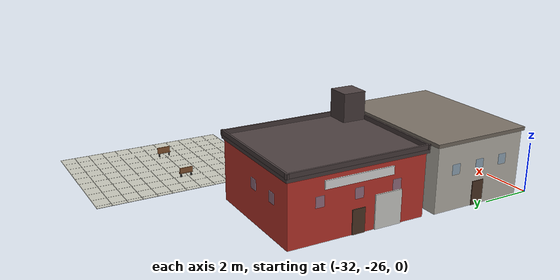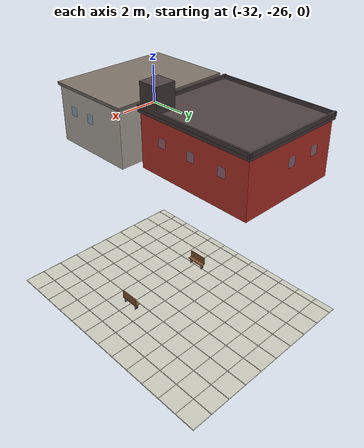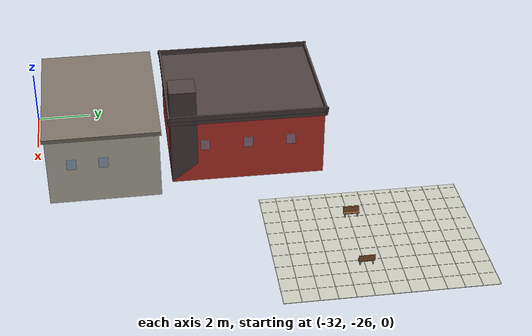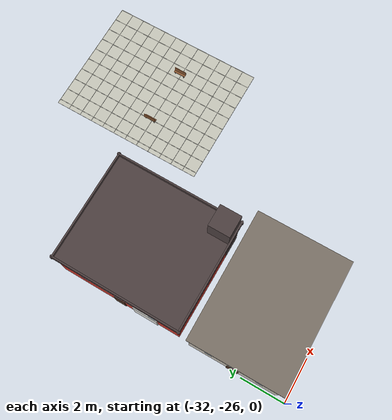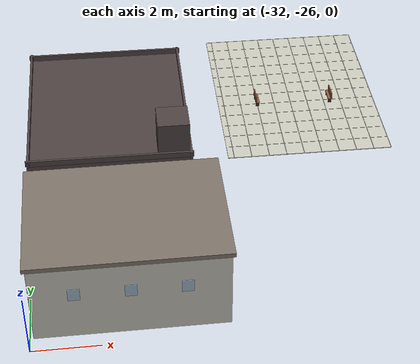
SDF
<sdf version="1.10">
 <world name="city_town_real_improved">
  <model name="central_plaza">
   <static>true</static>
   <pose>-22.6455993652344 -14.5340393066406 0 0 0 1.56522998544021</pose>
   <link name="link">
    <collision name="plaza_col">
     <pose>0 0 0.008 0 0 0</pose>
     <geometry><box><size>7.2 5.6 0.016</size></box></geometry>
    </collision>
    <visual name="plaza_vis">
     <pose>0 0 0.008 0 0 0</pose>
     <geometry><box><size>7.2 5.6 0.016</size></box></geometry>
     <material>
      <ambient>0.779999971 0.779999971 0.730000019 1</ambient>
      <diffuse>0.779999971 0.779999971 0.730000019 1</diffuse>
      <specular>0.0799999982 0.0799999982 0.0799999982 1</specular>
     </material>
    </visual>
    <visual name="gx0">
     <pose>-3.6 0 0.0164 0 0 0</pose>
     <geometry><box><size>0.016 5.6 0.002</size></box></geometry>
     <material>
      <ambient>0.639999986 0.639999986 0.600000024 1</ambient>
      <diffuse>0.639999986 0.639999986 0.600000024 1</diffuse>
      <specular>0.0799999982 0.0799999982 0.0799999982 1</specular>
     </material>
    </visual>
    <visual name="gx1">
     <pose>-3 0 0.0164 0 0 0</pose>
     <geometry><box><size>0.016 5.6 0.002</size></box></geometry>
     <material>
      <ambient>0.639999986 0.639999986 0.600000024 1</ambient>
      <diffuse>0.639999986 0.639999986 0.600000024 1</diffuse>
      <specular>0.0799999982 0.0799999982 0.0799999982 1</specular>
     </material>
    </visual>
    <visual name="gx2">
     <pose>-2.4 0 0.0164 0 0 0</pose>
     <geometry><box><size>0.016 5.6 0.002</size></box></geometry>
     <material>
      <ambient>0.639999986 0.639999986 0.600000024 1</ambient>
      <diffuse>0.639999986 0.639999986 0.600000024 1</diffuse>
      <specular>0.0799999982 0.0799999982 0.0799999982 1</specular>
     </material>
    </visual>
    <visual name="gx3">
     <pose>-1.8 0 0.0164 0 0 0</pose>
     <geometry><box><size>0.016 5.6 0.002</size></box></geometry>
     <material>
      <ambient>0.639999986 0.639999986 0.600000024 1</ambient>
      <diffuse>0.639999986 0.639999986 0.600000024 1</diffuse>
      <specular>0.0799999982 0.0799999982 0.0799999982 1</specular>
     </material>
    </visual>
    <visual name="gx4">
     <pose>-1.2 0 0.0164 0 0 0</pose>
     <geometry><box><size>0.016 5.6 0.002</size></box></geometry>
     <material>
      <ambient>0.639999986 0.639999986 0.600000024 1</ambient>
      <diffuse>0.639999986 0.639999986 0.600000024 1</diffuse>
      <specular>0.0799999982 0.0799999982 0.0799999982 1</specular>
     </material>
    </visual>
    <visual name="gx5">
     <pose>-0.6 0 0.0164 0 0 0</pose>
     <geometry><box><size>0.016 5.6 0.002</size></box></geometry>
     <material>
      <ambient>0.639999986 0.639999986 0.600000024 1</ambient>
      <diffuse>0.639999986 0.639999986 0.600000024 1</diffuse>
      <specular>0.0799999982 0.0799999982 0.0799999982 1</specular>
     </material>
    </visual>
    <visual name="gx6">
     <pose>0 0 0.0164 0 0 0</pose>
     <geometry><box><size>0.016 5.6 0.002</size></box></geometry>
     <material>
      <ambient>0.639999986 0.639999986 0.600000024 1</ambient>
      <diffuse>0.639999986 0.639999986 0.600000024 1</diffuse>
      <specular>0.0799999982 0.0799999982 0.0799999982 1</specular>
     </material>
    </visual>
    <visual name="gx7">
     <pose>0.6 0 0.0164 0 0 0</pose>
     <geometry><box><size>0.016 5.6 0.002</size></box></geometry>
     <material>
      <ambient>0.639999986 0.639999986 0.600000024 1</ambient>
      <diffuse>0.639999986 0.639999986 0.600000024 1</diffuse>
      <specular>0.0799999982 0.0799999982 0.0799999982 1</specular>
     </material>
    </visual>
    <visual name="gx8">
     <pose>1.2 0 0.0164 0 0 0</pose>
     <geometry><box><size>0.016 5.6 0.002</size></box></geometry>
     <material>
      <ambient>0.639999986 0.639999986 0.600000024 1</ambient>
      <diffuse>0.639999986 0.639999986 0.600000024 1</diffuse>
      <specular>0.0799999982 0.0799999982 0.0799999982 1</specular>
     </material>
    </visual>
    <visual name="gx9">
     <pose>1.8 0 0.0164 0 0 0</pose>
     <geometry><box><size>0.016 5.6 0.002</size></box></geometry>
     <material>
      <ambient>0.639999986 0.639999986 0.600000024 1</ambient>
      <diffuse>0.639999986 0.639999986 0.600000024 1</diffuse>
      <specular>0.0799999982 0.0799999982 0.0799999982 1</specular>
     </material>
    </visual>
    <visual name="gx10">
     <pose>2.4 0 0.0164 0 0 0</pose>
     <geometry><box><size>0.016 5.6 0.002</size></box></geometry>
     <material>
      <ambient>0.639999986 0.639999986 0.600000024 1</ambient>
      <diffuse>0.639999986 0.639999986 0.600000024 1</diffuse>
      <specular>0.0799999982 0.0799999982 0.0799999982 1</specular>
     </material>
    </visual>
    <visual name="gx11">
     <pose>3 0 0.0164 0 0 0</pose>
     <geometry><box><size>0.016 5.6 0.002</size></box></geometry>
     <material>
      <ambient>0.639999986 0.639999986 0.600000024 1</ambient>
      <diffuse>0.639999986 0.639999986 0.600000024 1</diffuse>
      <specular>0.0799999982 0.0799999982 0.0799999982 1</specular>
     </material>
    </visual>
    <visual name="gx12">
     <pose>3.6 0 0.0164 0 0 0</pose>
     <geometry><box><size>0.016 5.6 0.002</size></box></geometry>
     <material>
      <ambient>0.639999986 0.639999986 0.600000024 1</ambient>
      <diffuse>0.639999986 0.639999986 0.600000024 1</diffuse>
      <specular>0.0799999982 0.0799999982 0.0799999982 1</specular>
     </material>
    </visual>
    <visual name="gy0">
     <pose>0 -2.8 0.0164 0 0 0</pose>
     <geometry><box><size>7.2 0.016 0.002</size></box></geometry>
     <material>
      <ambient>0.639999986 0.639999986 0.600000024 1</ambient>
      <diffuse>0.639999986 0.639999986 0.600000024 1</diffuse>
      <specular>0.0799999982 0.0799999982 0.0799999982 1</specular>
     </material>
    </visual>
    <visual name="gy1">
     <pose>0 -2.2 0.0164 0 0 0</pose>
     <geometry><box><size>7.2 0.016 0.002</size></box></geometry>
     <material>
      <ambient>0.639999986 0.639999986 0.600000024 1</ambient>
      <diffuse>0.639999986 0.639999986 0.600000024 1</diffuse>
      <specular>0.0799999982 0.0799999982 0.0799999982 1</specular>
     </material>
    </visual>
    <visual name="gy2">
     <pose>0 -1.6 0.0164 0 0 0</pose>
     <geometry><box><size>7.2 0.016 0.002</size></box></geometry>
     <material>
      <ambient>0.639999986 0.639999986 0.600000024 1</ambient>
      <diffuse>0.639999986 0.639999986 0.600000024 1</diffuse>
      <specular>0.0799999982 0.0799999982 0.0799999982 1</specular>
     </material>
    </visual>
    <visual name="gy3">
     <pose>0 -1 0.0164 0 0 0</pose>
     <geometry><box><size>7.2 0.016 0.002</size></box></geometry>
     <material>
      <ambient>0.639999986 0.639999986 0.600000024 1</ambient>
      <diffuse>0.639999986 0.639999986 0.600000024 1</diffuse>
      <specular>0.0799999982 0.0799999982 0.0799999982 1</specular>
     </material>
    </visual>
    <visual name="gy4">
     <pose>0 -0.4 0.0164 0 0 0</pose>
     <geometry><box><size>7.2 0.016 0.002</size></box></geometry>
     <material>
      <ambient>0.639999986 0.639999986 0.600000024 1</ambient>
      <diffuse>0.639999986 0.639999986 0.600000024 1</diffuse>
      <specular>0.0799999982 0.0799999982 0.0799999982 1</specular>
     </material>
    </visual>
    <visual name="gy5">
     <pose>0 0.2 0.0164 0 0 0</pose>
     <geometry><box><size>7.2 0.016 0.002</size></box></geometry>
     <material>
      <ambient>0.639999986 0.639999986 0.600000024 1</ambient>
      <diffuse>0.639999986 0.639999986 0.600000024 1</diffuse>
      <specular>0.0799999982 0.0799999982 0.0799999982 1</specular>
     </material>
    </visual>
    <visual name="gy6">
     <pose>0 0.8 0.0164 0 0 0</pose>
     <geometry><box><size>7.2 0.016 0.002</size></box></geometry>
     <material>
      <ambient>0.639999986 0.639999986 0.600000024 1</ambient>
      <diffuse>0.639999986 0.639999986 0.600000024 1</diffuse>
      <specular>0.0799999982 0.0799999982 0.0799999982 1</specular>
     </material>
    </visual>
    <visual name="gy7">
     <pose>0 1.4 0.0164 0 0 0</pose>
     <geometry><box><size>7.2 0.016 0.002</size></box></geometry>
     <material>
      <ambient>0.639999986 0.639999986 0.600000024 1</ambient>
      <diffuse>0.639999986 0.639999986 0.600000024 1</diffuse>
      <specular>0.0799999982 0.0799999982 0.0799999982 1</specular>
     </material>
    </visual>
    <visual name="gy8">
     <pose>0 2 0.0164 0 0 0</pose>
     <geometry><box><size>7.2 0.016 0.002</size></box></geometry>
     <material>
      <ambient>0.639999986 0.639999986 0.600000024 1</ambient>
      <diffuse>0.639999986 0.639999986 0.600000024 1</diffuse>
      <specular>0.0799999982 0.0799999982 0.0799999982 1</specular>
     </material>
    </visual>
    <visual name="gy9">
     <pose>0 2.6 0.0164 0 0 0</pose>
     <geometry><box><size>7.2 0.016 0.002</size></box></geometry>
     <material>
      <ambient>0.639999986 0.639999986 0.600000024 1</ambient>
      <diffuse>0.639999986 0.639999986 0.600000024 1</diffuse>
      <specular>0.0799999982 0.0799999982 0.0799999982 1</specular>
     </material>
    </visual>
    <inertial>
     <mass>1</mass>
     <inertia><ixx>1</ixx><ixy>0</ixy><ixz>0</ixz><iyy>1</iyy><iyz>0</iyz><izz>1</izz></inertia>
    </inertial>
   </link>
  </model>
  <model name="fire_station">
   <static>true</static>
   <pose>-29.3855163574219 -18.2624008178711 0 0 0 -1.58175001056651</pose>
   <link name="link">
    <collision name="body_col">
     <pose>0 0 1.24 0 0 0</pose>
     <geometry><box><size>5.6 4.8 2.48</size></box></geometry>
    </collision>
    <visual name="body_vis">
     <pose>0 0 1.24 0 0 0</pose>
     <geometry><box><size>5.6 4.8 2.48</size></box></geometry>
     <material>
      <ambient>0.779999971 0.219999999 0.180000007 1</ambient>
      <diffuse>0.779999971 0.219999999 0.180000007 1</diffuse>
      <specular>0.0799999982 0.0799999982 0.0799999982 1</specular>
     </material>
    </visual>
    <collision name="roof_col">
     <pose>0 0 2.55 0 0 0</pose>
     <geometry><box><size>5.76 4.96 0.14</size></box></geometry>
    </collision>
    <visual name="roof_vis">
     <pose>0 0 2.55 0 0 0</pose>
     <geometry><box><size>5.76 4.96 0.14</size></box></geometry>
     <material>
      <ambient>0.300000012 0.25 0.25 1</ambient>
      <diffuse>0.300000012 0.25 0.25 1</diffuse>
      <specular>0.0799999982 0.0799999982 0.0799999982 1</specular>
     </material>
    </visual>
    <visual name="p1_vis">
     <pose>0 2.436 2.708 0 0 0</pose>
     <geometry><box><size>5.82 0.072 0.18</size></box></geometry>
     <material>
      <ambient>0.300000012 0.25 0.25 1</ambient>
      <diffuse>0.300000012 0.25 0.25 1</diffuse>
      <specular>0.0799999982 0.0799999982 0.0799999982 1</specular>
     </material>
    </visual>
    <visual name="p2_vis">
     <pose>0 -2.436 2.708 0 0 0</pose>
     <geometry><box><size>5.82 0.072 0.18</size></box></geometry>
     <material>
      <ambient>0.300000012 0.25 0.25 1</ambient>
      <diffuse>0.300000012 0.25 0.25 1</diffuse>
      <specular>0.0799999982 0.0799999982 0.0799999982 1</specular>
     </material>
    </visual>
    <visual name="p3_vis">
     <pose>2.836 0 2.708 0 0 0</pose>
     <geometry><box><size>0.072 5.02 0.18</size></box></geometry>
     <material>
      <ambient>0.300000012 0.25 0.25 1</ambient>
      <diffuse>0.300000012 0.25 0.25 1</diffuse>
      <specular>0.0799999982 0.0799999982 0.0799999982 1</specular>
     </material>
    </visual>
    <visual name="p4_vis">
     <pose>-2.836 0 2.708 0 0 0</pose>
     <geometry><box><size>0.072 5.02 0.18</size></box></geometry>
     <material>
      <ambient>0.300000012 0.25 0.25 1</ambient>
      <diffuse>0.300000012 0.25 0.25 1</diffuse>
      <specular>0.0799999982 0.0799999982 0.0799999982 1</specular>
     </material>
    </visual>
    <visual name="door_vis">
     <pose>0 -2.416 0.48 0 0 0</pose>
     <geometry><box><size>0.52 0.04 0.96</size></box></geometry>
     <material>
      <ambient>0.319999993 0.219999999 0.159999996 1</ambient>
      <diffuse>0.319999993 0.219999999 0.159999996 1</diffuse>
      <specular>0.0799999982 0.0799999982 0.0799999982 1</specular>
     </material>
    </visual>
    <visual name="win_south_0">
     <pose>-1.568 -2.412 1.5376 0 0 0</pose>
     <geometry><box><size>0.34 0.032 0.4</size></box></geometry>
     <material>
      <ambient>0.550000012 0.720000029 0.879999995 0.550000012</ambient>
      <diffuse>0.550000012 0.720000029 0.879999995 0.550000012</diffuse>
      <specular>0.0799999982 0.0799999982 0.0799999982 1</specular>
      <transparency>0.35</transparency>
     </material>
    </visual>
    <visual name="win_south_1">
     <pose>0 -2.412 1.5376 0 0 0</pose>
     <geometry><box><size>0.34 0.032 0.4</size></box></geometry>
     <material>
      <ambient>0.550000012 0.720000029 0.879999995 0.550000012</ambient>
      <diffuse>0.550000012 0.720000029 0.879999995 0.550000012</diffuse>
      <specular>0.0799999982 0.0799999982 0.0799999982 1</specular>
      <transparency>0.35</transparency>
     </material>
    </visual>
    <visual name="win_south_2">
     <pose>1.568 -2.412 1.5376 0 0 0</pose>
     <geometry><box><size>0.34 0.032 0.4</size></box></geometry>
     <material>
      <ambient>0.550000012 0.720000029 0.879999995 0.550000012</ambient>
      <diffuse>0.550000012 0.720000029 0.879999995 0.550000012</diffuse>
      <specular>0.0799999982 0.0799999982 0.0799999982 1</specular>
      <transparency>0.35</transparency>
     </material>
    </visual>
    <visual name="win_west_0">
     <pose>-2.812 -1.344 1.5376 0 0 0</pose>
     <geometry><box><size>0.032 0.34 0.4</size></box></geometry>
     <material>
      <ambient>0.550000012 0.720000029 0.879999995 0.550000012</ambient>
      <diffuse>0.550000012 0.720000029 0.879999995 0.550000012</diffuse>
      <specular>0.0799999982 0.0799999982 0.0799999982 1</specular>
      <transparency>0.35</transparency>
     </material>
    </visual>
    <visual name="win_west_1">
     <pose>-2.812 0 1.5376 0 0 0</pose>
     <geometry><box><size>0.032 0.34 0.4</size></box></geometry>
     <material>
      <ambient>0.550000012 0.720000029 0.879999995 0.550000012</ambient>
      <diffuse>0.550000012 0.720000029 0.879999995 0.550000012</diffuse>
      <specular>0.0799999982 0.0799999982 0.0799999982 1</specular>
      <transparency>0.35</transparency>
     </material>
    </visual>
    <visual name="win_east_0">
     <pose>2.812 -1.344 1.5376 0 0 0</pose>
     <geometry><box><size>0.032 0.34 0.4</size></box></geometry>
     <material>
      <ambient>0.550000012 0.720000029 0.879999995 0.550000012</ambient>
      <diffuse>0.550000012 0.720000029 0.879999995 0.550000012</diffuse>
      <specular>0.0799999982 0.0799999982 0.0799999982 1</specular>
      <transparency>0.35</transparency>
     </material>
    </visual>
    <visual name="win_east_1">
     <pose>2.812 0 1.5376 0 0 0</pose>
     <geometry><box><size>0.032 0.34 0.4</size></box></geometry>
     <material>
      <ambient>0.550000012 0.720000029 0.879999995 0.550000012</ambient>
      <diffuse>0.550000012 0.720000029 0.879999995 0.550000012</diffuse>
      <specular>0.0799999982 0.0799999982 0.0799999982 1</specular>
      <transparency>0.35</transparency>
     </material>
    </visual>
    <visual name="win_north_0">
     <pose>-1.568 2.412 1.5376 0 0 0</pose>
     <geometry><box><size>0.34 0.032 0.4</size></box></geometry>
     <material>
      <ambient>0.550000012 0.720000029 0.879999995 0.550000012</ambient>
      <diffuse>0.550000012 0.720000029 0.879999995 0.550000012</diffuse>
      <specular>0.0799999982 0.0799999982 0.0799999982 1</specular>
      <transparency>0.35</transparency>
     </material>
    </visual>
    <visual name="win_north_1">
     <pose>0 2.412 1.5376 0 0 0</pose>
     <geometry><box><size>0.34 0.032 0.4</size></box></geometry>
     <material>
      <ambient>0.550000012 0.720000029 0.879999995 0.550000012</ambient>
      <diffuse>0.550000012 0.720000029 0.879999995 0.550000012</diffuse>
      <specular>0.0799999982 0.0799999982 0.0799999982 1</specular>
      <transparency>0.35</transparency>
     </material>
    </visual>
    <visual name="win_north_2">
     <pose>1.568 2.412 1.5376 0 0 0</pose>
     <geometry><box><size>0.34 0.032 0.4</size></box></geometry>
     <material>
      <ambient>0.550000012 0.720000029 0.879999995 0.550000012</ambient>
      <diffuse>0.550000012 0.720000029 0.879999995 0.550000012</diffuse>
      <specular>0.0799999982 0.0799999982 0.0799999982 1</specular>
      <transparency>0.35</transparency>
     </material>
    </visual>
    <visual name="sign_vis">
     <pose>0 -2.428 2.108 0 0 0</pose>
     <geometry><box><size>2.8 0.048 0.32</size></box></geometry>
     <material>
      <ambient>0.920000017 0.920000017 0.920000017 1</ambient>
      <diffuse>0.920000017 0.920000017 0.920000017 1</diffuse>
      <specular>0.0799999982 0.0799999982 0.0799999982 1</specular>
     </material>
    </visual>
    <visual name="garage">
     <pose>1.232 -2.424 0.66 0 0 0</pose>
     <geometry><box><size>1.12 0.048 1.32</size></box></geometry>
     <material>
      <ambient>0.860000014 0.860000014 0.839999974 1</ambient>
      <diffuse>0.860000014 0.860000014 0.839999974 1</diffuse>
      <specular>0.0799999982 0.0799999982 0.0799999982 1</specular>
     </material>
    </visual>
    <collision name="tower_col">
     <pose>2.32 1.92 1.88 0 0 0</pose>
     <geometry><box><size>0.96 0.96 3.76</size></box></geometry>
    </collision>
    <visual name="tower_vis">
     <pose>2.32 1.92 1.88 0 0 0</pose>
     <geometry><box><size>0.96 0.96 3.76</size></box></geometry>
     <material>
      <ambient>0.300000012 0.25 0.25 1</ambient>
      <diffuse>0.300000012 0.25 0.25 1</diffuse>
      <specular>0.0799999982 0.0799999982 0.0799999982 1</specular>
     </material>
    </visual>
    <inertial>
     <mass>1</mass>
     <inertia><ixx>1</ixx><ixy>0</ixy><ixz>0</ixz><iyy>1</iyy><iyz>0</iyz><izz>1</izz></inertia>
    </inertial>
   </link>
  </model>
  <model name="bench_1">
   <static>true</static>
   <pose>-24.0544708251953 -15.0435668945313 0 0 0 -1.57385998235563</pose>
   <link name="link">
    <visual name="seat">
     <pose>0 0 0.18 0 0 0</pose>
     <geometry><box><size>0.56 0.14 0.032</size></box></geometry>
     <material>
      <ambient>0.550000012 0.349999994 0.200000003 1</ambient>
      <diffuse>0.550000012 0.349999994 0.200000003 1</diffuse>
      <specular>0.0799999982 0.0799999982 0.0799999982 1</specular>
     </material>
    </visual>
    <visual name="back">
     <pose>0 -0.048 0.3 0 0 0</pose>
     <geometry><box><size>0.56 0.032 0.22</size></box></geometry>
     <material>
      <ambient>0.550000012 0.349999994 0.200000003 1</ambient>
      <diffuse>0.550000012 0.349999994 0.200000003 1</diffuse>
      <specular>0.0799999982 0.0799999982 0.0799999982 1</specular>
     </material>
    </visual>
    <visual name="leg1">
     <pose>-0.22 0 0.088 0 0 0</pose>
     <geometry><box><size>0.032 0.112 0.176</size></box></geometry>
     <material>
      <ambient>0.180000007 0.180000007 0.180000007 1</ambient>
      <diffuse>0.180000007 0.180000007 0.180000007 1</diffuse>
      <specular>0.0799999982 0.0799999982 0.0799999982 1</specular>
     </material>
    </visual>
    <visual name="leg2">
     <pose>0.22 0 0.088 0 0 0</pose>
     <geometry><box><size>0.032 0.112 0.176</size></box></geometry>
     <material>
      <ambient>0.180000007 0.180000007 0.180000007 1</ambient>
      <diffuse>0.180000007 0.180000007 0.180000007 1</diffuse>
      <specular>0.0799999982 0.0799999982 0.0799999982 1</specular>
     </material>
    </visual>
    <inertial>
     <mass>1</mass>
     <inertia><ixx>1</ixx><ixy>0</ixy><ixz>0</ixz><iyy>1</iyy><iyz>0</iyz><izz>1</izz></inertia>
    </inertial>
   </link>
  </model>
  <model name="bench_2">
   <static>true</static>
   <pose>-21.4449645996094 -15.087646484375 0 0 0 1.57080003571763</pose>
   <link name="link">
    <visual name="seat">
     <pose>0 0 0.18 0 0 0</pose>
     <geometry><box><size>0.56 0.14 0.032</size></box></geometry>
     <material>
      <ambient>0.550000012 0.349999994 0.200000003 1</ambient>
      <diffuse>0.550000012 0.349999994 0.200000003 1</diffuse>
      <specular>0.0799999982 0.0799999982 0.0799999982 1</specular>
     </material>
    </visual>
    <visual name="back">
     <pose>0 -0.048 0.3 0 0 0</pose>
     <geometry><box><size>0.56 0.032 0.22</size></box></geometry>
     <material>
      <ambient>0.550000012 0.349999994 0.200000003 1</ambient>
      <diffuse>0.550000012 0.349999994 0.200000003 1</diffuse>
      <specular>0.0799999982 0.0799999982 0.0799999982 1</specular>
     </material>
    </visual>
    <visual name="leg1">
     <pose>-0.22 0 0.088 0 0 0</pose>
     <geometry><box><size>0.032 0.112 0.176</size></box></geometry>
     <material>
      <ambient>0.180000007 0.180000007 0.180000007 1</ambient>
      <diffuse>0.180000007 0.180000007 0.180000007 1</diffuse>
      <specular>0.0799999982 0.0799999982 0.0799999982 1</specular>
     </material>
    </visual>
    <visual name="leg2">
     <pose>0.22 0 0.088 0 0 0</pose>
     <geometry><box><size>0.032 0.112 0.176</size></box></geometry>
     <material>
      <ambient>0.180000007 0.180000007 0.180000007 1</ambient>
      <diffuse>0.180000007 0.180000007 0.180000007 1</diffuse>
      <specular>0.0799999982 0.0799999982 0.0799999982 1</specular>
     </material>
    </visual>
    <inertial>
     <mass>1</mass>
     <inertia><ixx>1</ixx><ixy>0</ixy><ixz>0</ixz><iyy>1</iyy><iyz>0</iyz><izz>1</izz></inertia>
    </inertial>
   </link>
  </model>
  <model name="warehouse_east_1">
   <static>true</static>
   <pose>-29.1020486767562 -23.5312824687326 0 0 0 0</pose>
   <link name="link">
    <collision name="body_col">
     <pose>0 0 1.3 0 0 0</pose>
     <geometry><box><size>5.6 4 2.6</size></box></geometry>
    </collision>
    <visual name="body_vis">
     <pose>0 0 1.3 0 0 0</pose>
     <geometry><box><size>5.6 4 2.6</size></box></geometry>
     <material>
      <ambient>0.75999999 0.74000001 0.699999988 1</ambient>
      <diffuse>0.75999999 0.74000001 0.699999988 1</diffuse>
      <specular>0.0799999982 0.0799999982 0.0799999982 1</specular>
     </material>
    </visual>
    <collision name="roof_col">
     <pose>0 0 2.67 0 0 0</pose>
     <geometry><box><size>5.76 4.16 0.14</size></box></geometry>
    </collision>
    <visual name="roof_vis">
     <pose>0 0 2.67 0 0 0</pose>
     <geometry><box><size>5.76 4.16 0.14</size></box></geometry>
     <material>
      <ambient>0.479999989 0.439999998 0.400000006 1</ambient>
      <diffuse>0.479999989 0.439999998 0.400000006 1</diffuse>
      <specular>0.0799999982 0.0799999982 0.0799999982 1</specular>
     </material>
    </visual>
    <visual name="door_vis">
     <pose>-2.816 0 0.48 0 0 0</pose>
     <geometry><box><size>0.04 0.52 0.96</size></box></geometry>
     <material>
      <ambient>0.319999993 0.219999999 0.159999996 1</ambient>
      <diffuse>0.319999993 0.219999999 0.159999996 1</diffuse>
      <specular>0.0799999982 0.0799999982 0.0799999982 1</specular>
     </material>
    </visual>
    <visual name="win_west_0">
     <pose>-2.812 -1.12 1.612 0 0 0</pose>
     <geometry><box><size>0.032 0.34 0.4</size></box></geometry>
     <material>
      <ambient>0.550000012 0.720000029 0.879999995 0.550000012</ambient>
      <diffuse>0.550000012 0.720000029 0.879999995 0.550000012</diffuse>
      <specular>0.0799999982 0.0799999982 0.0799999982 1</specular>
      <transparency>0.35</transparency>
     </material>
    </visual>
    <visual name="win_west_1">
     <pose>-2.812 0 1.612 0 0 0</pose>
     <geometry><box><size>0.032 0.34 0.4</size></box></geometry>
     <material>
      <ambient>0.550000012 0.720000029 0.879999995 0.550000012</ambient>
      <diffuse>0.550000012 0.720000029 0.879999995 0.550000012</diffuse>
      <specular>0.0799999982 0.0799999982 0.0799999982 1</specular>
      <transparency>0.35</transparency>
     </material>
    </visual>
    <visual name="win_west_2">
     <pose>-2.812 1.12 1.612 0 0 0</pose>
     <geometry><box><size>0.032 0.34 0.4</size></box></geometry>
     <material>
      <ambient>0.550000012 0.720000029 0.879999995 0.550000012</ambient>
      <diffuse>0.550000012 0.720000029 0.879999995 0.550000012</diffuse>
      <specular>0.0799999982 0.0799999982 0.0799999982 1</specular>
      <transparency>0.35</transparency>
     </material>
    </visual>
    <visual name="win_south_0">
     <pose>-1.568 -2.012 1.612 0 0 0</pose>
     <geometry><box><size>0.34 0.032 0.4</size></box></geometry>
     <material>
      <ambient>0.550000012 0.720000029 0.879999995 0.550000012</ambient>
      <diffuse>0.550000012 0.720000029 0.879999995 0.550000012</diffuse>
      <specular>0.0799999982 0.0799999982 0.0799999982 1</specular>
      <transparency>0.35</transparency>
     </material>
    </visual>
    <visual name="win_south_1">
     <pose>0 -2.012 1.612 0 0 0</pose>
     <geometry><box><size>0.34 0.032 0.4</size></box></geometry>
     <material>
      <ambient>0.550000012 0.720000029 0.879999995 0.550000012</ambient>
      <diffuse>0.550000012 0.720000029 0.879999995 0.550000012</diffuse>
      <specular>0.0799999982 0.0799999982 0.0799999982 1</specular>
      <transparency>0.35</transparency>
     </material>
    </visual>
    <visual name="win_south_2">
     <pose>1.568 -2.012 1.612 0 0 0</pose>
     <geometry><box><size>0.34 0.032 0.4</size></box></geometry>
     <material>
      <ambient>0.550000012 0.720000029 0.879999995 0.550000012</ambient>
      <diffuse>0.550000012 0.720000029 0.879999995 0.550000012</diffuse>
      <specular>0.0799999982 0.0799999982 0.0799999982 1</specular>
      <transparency>0.35</transparency>
     </material>
    </visual>
    <visual name="win_east_0">
     <pose>2.812 -1.12 1.612 0 0 0</pose>
     <geometry><box><size>0.032 0.34 0.4</size></box></geometry>
     <material>
      <ambient>0.550000012 0.720000029 0.879999995 0.550000012</ambient>
      <diffuse>0.550000012 0.720000029 0.879999995 0.550000012</diffuse>
      <specular>0.0799999982 0.0799999982 0.0799999982 1</specular>
      <transparency>0.35</transparency>
     </material>
    </visual>
    <visual name="win_east_1">
     <pose>2.812 0 1.612 0 0 0</pose>
     <geometry><box><size>0.032 0.34 0.4</size></box></geometry>
     <material>
      <ambient>0.550000012 0.720000029 0.879999995 0.550000012</ambient>
      <diffuse>0.550000012 0.720000029 0.879999995 0.550000012</diffuse>
      <specular>0.0799999982 0.0799999982 0.0799999982 1</specular>
      <transparency>0.35</transparency>
     </material>
    </visual>
    <visual name="win_north_0">
     <pose>-1.568 2.012 1.612 0 0 0</pose>
     <geometry><box><size>0.34 0.032 0.4</size></box></geometry>
     <material>
      <ambient>0.550000012 0.720000029 0.879999995 0.550000012</ambient>
      <diffuse>0.550000012 0.720000029 0.879999995 0.550000012</diffuse>
      <specular>0.0799999982 0.0799999982 0.0799999982 1</specular>
      <transparency>0.35</transparency>
     </material>
    </visual>
    <visual name="win_north_1">
     <pose>0 2.012 1.612 0 0 0</pose>
     <geometry><box><size>0.34 0.032 0.4</size></box></geometry>
     <material>
      <ambient>0.550000012 0.720000029 0.879999995 0.550000012</ambient>
      <diffuse>0.550000012 0.720000029 0.879999995 0.550000012</diffuse>
      <specular>0.0799999982 0.0799999982 0.0799999982 1</specular>
      <transparency>0.35</transparency>
     </material>
    </visual>
    <visual name="win_north_2">
     <pose>1.568 2.012 1.612 0 0 0</pose>
     <geometry><box><size>0.34 0.032 0.4</size></box></geometry>
     <material>
      <ambient>0.550000012 0.720000029 0.879999995 0.550000012</ambient>
      <diffuse>0.550000012 0.720000029 0.879999995 0.550000012</diffuse>
      <specular>0.0799999982 0.0799999982 0.0799999982 1</specular>
      <transparency>0.35</transparency>
     </material>
    </visual>
    <inertial>
     <mass>1</mass>
     <inertia><ixx>1</ixx><ixy>0</ixy><ixz>0</ixz><iyy>1</iyy><iyz>0</iyz><izz>1</izz></inertia>
    </inertial>
   </link>
  </model>
 </world>
</sdf>
